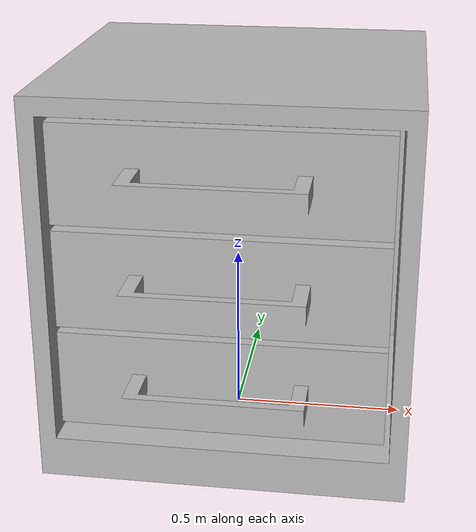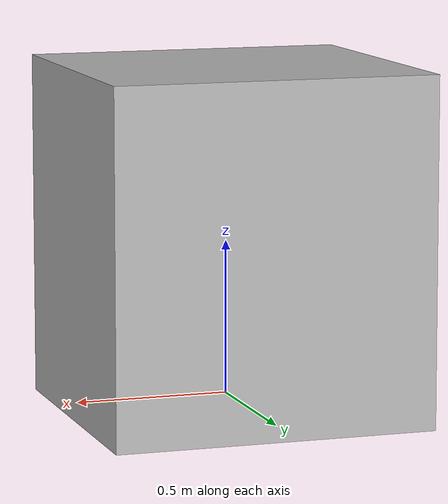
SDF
<?xml version='1.0' encoding='utf-8'?>
<sdf version="1.7">
    <model name="cabinet_with_drawer">
    <pose>0 0 0 0 0 0</pose>

        <link name="cabinet">
            <pose>0 0 0 0 0 0</pose>
            <inertial>
              <inertia>
                <ixx>2.501</ixx>
                <ixy>0</ixy>
                <ixz>0</ixz>
                <iyy>2.501</iyy>
                <iyz>0</iyz>
                <izz>5</izz>
              </inertia>
              <mass>120.0</mass>
          </inertial>
            <visual name="cabinet_visual">
                <geometry>
                    <mesh>
                     <uri>model://cabinet_drawer/meshes/cabinet.dae</uri>
                     <scale>1 1 1</scale>
                    </mesh>
                </geometry>
            </visual>
            <collision name="cabinet_collision">
                <geometry>
                    <mesh>
                     <uri>model://cabinet_drawer/meshes/cabinet.dae</uri>
                     <scale>1 1 1</scale>
                    </mesh>
                </geometry>
            </collision>
        </link>

        <joint name="world_fixed" type="fixed">
        <parent>world</parent>
        <child>cabinet</child>
        </joint>

        <link name="drawer1">
            <pose>0.013 -0.23 0.9 0 0 0</pose>
            <inertial>
              <inertia>
                <ixx>0.201</ixx>
                <ixy>0</ixy>
                <ixz>0</ixz>
                <iyy>0.201</iyy>
                <iyz>0</iyz>
                <izz>0.5</izz>
              </inertia>
              <mass>2.0</mass>
          </inertial>
            <visual name="drawer_visual1">
                <geometry>
                    <mesh>
                     <uri>model://cabinet_drawer/meshes/drawer.dae</uri>
                     <scale>1 1 1</scale>
                    </mesh>
                </geometry>
            </visual>
            <collision name="drawer_collision1">
                <geometry>
                    <mesh>
                     <uri>model://cabinet_drawer/meshes/drawer.dae</uri>
                     <scale>1 1 1</scale>
                    </mesh>
                </geometry>
            </collision>
        </link>

        <joint name="drawer_joint1" type="prismatic">
        <child>drawer1</child>
        <parent>cabinet</parent>
        <axis>
          <limit>
            <lower>-0.6</lower>
            <upper>0</upper>
          </limit>
          <xyz>0 1 0</xyz>
        </axis>
       </joint>

        <link name="drawer2">
            <pose>0.013 -0.23 0.6 0 0 0</pose>
            <inertial>
              <inertia>
                <ixx>0.201</ixx>
                <ixy>0</ixy>
                <ixz>0</ixz>
                <iyy>0.201</iyy>
                <iyz>0</iyz>
                <izz>0.5</izz>
              </inertia>
              <mass>2.0</mass>
          </inertial>
            <visual name="drawer_visual2">
                <geometry>
                    <mesh>
                     <uri>model://cabinet_drawer/meshes/drawer.dae</uri>
                     <scale>1 1 1</scale>
                    </mesh>
                </geometry>
            </visual>
            <collision name="drawer_collision2">
                <geometry>
                    <mesh>
                     <uri>model://cabinet_drawer/meshes/drawer.dae</uri>
                     <scale>1 1 1</scale>
                    </mesh>
                </geometry>
            </collision>
        </link>

        <joint name="drawer_joint2" type="prismatic">
        <child>drawer2</child>
        <parent>cabinet</parent>
        <axis>
          <limit>
            <lower>-0.6</lower>
            <upper>0</upper>
          </limit>
          <xyz>0 1 0</xyz>
        </axis>
       </joint>

        <link name="drawer3">
            <pose>0.013 -0.23 0.3 0 0 0</pose>
            <inertial>
              <inertia>
                <ixx>0.201</ixx>
                <ixy>0</ixy>
                <ixz>0</ixz>
                <iyy>0.201</iyy>
                <iyz>0</iyz>
                <izz>0.5</izz>
              </inertia>
              <mass>2.0</mass>
          </inertial>
            <visual name="drawer_visual3">
                <geometry>
                    <mesh>
                     <uri>model://cabinet_drawer/meshes/drawer.dae</uri>
                     <scale>1 1 1</scale>
                    </mesh>
                </geometry>
            </visual>
            <collision name="drawer_collision3">
                <geometry>
                    <mesh>
                     <uri>model://cabinet_drawer/meshes/drawer.dae</uri>
                     <scale>1 1 1</scale>
                    </mesh>
                </geometry>
            </collision>
        </link>

        <joint name="drawer_joint3" type="prismatic">
        <child>drawer3</child>
        <parent>cabinet</parent>
        <axis>
          <limit>
            <lower>-0.6</lower>
            <upper>0</upper>
          </limit>
          <xyz>0 1 0</xyz>
        </axis>
       </joint>

    </model>
</sdf>
